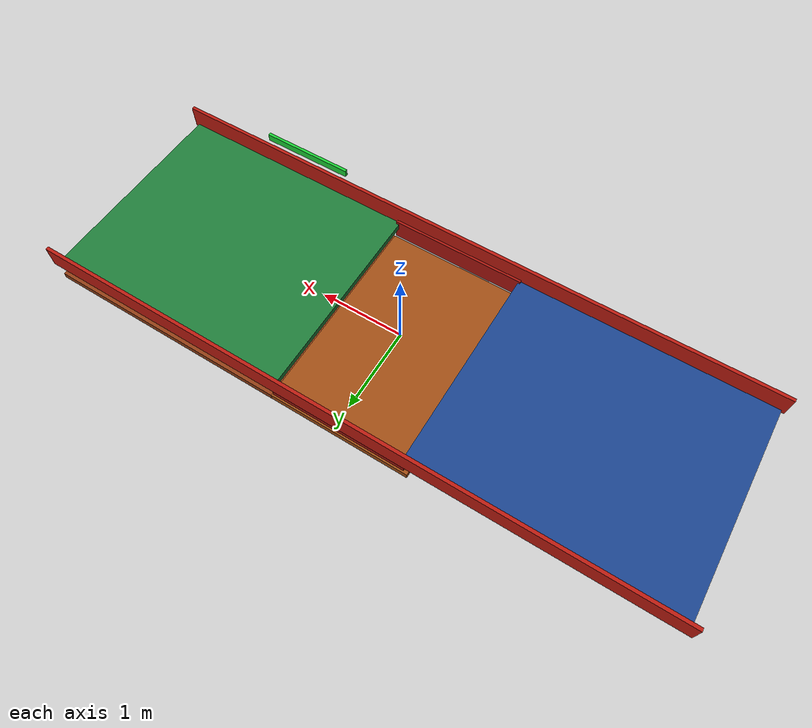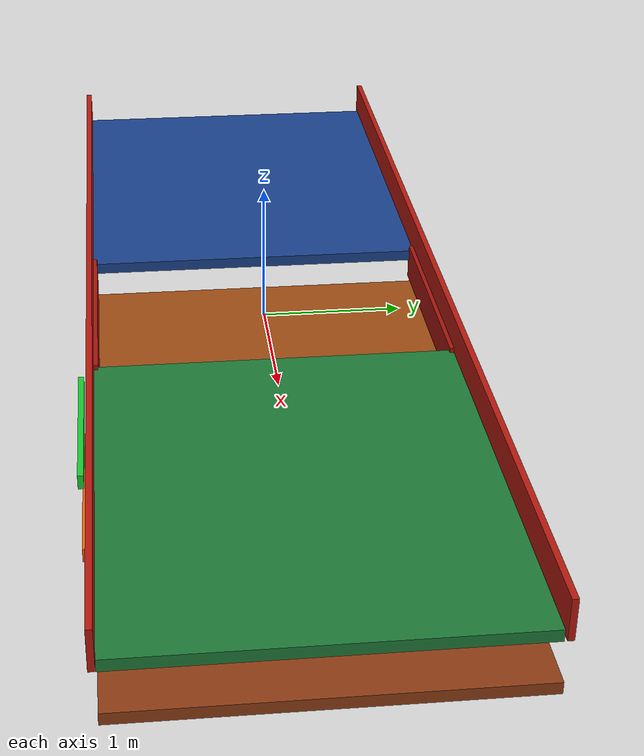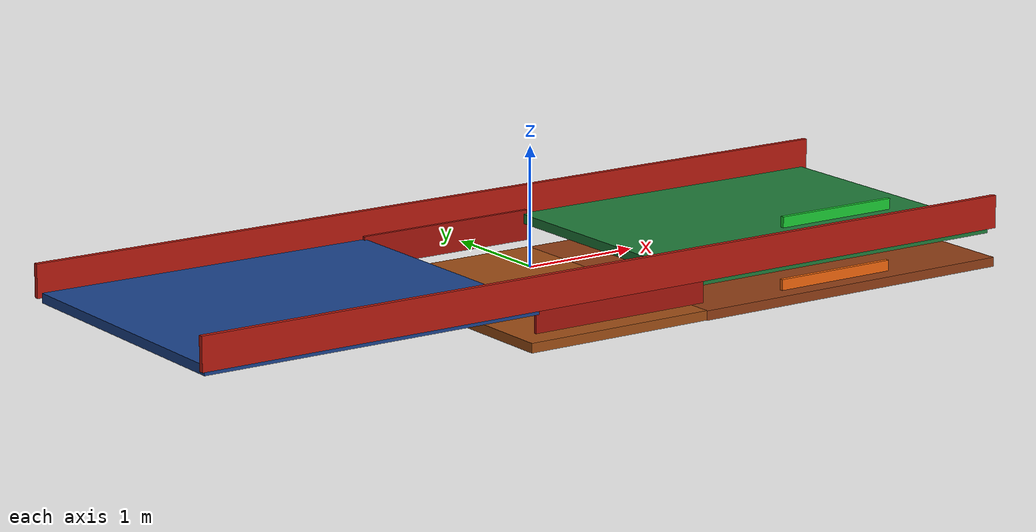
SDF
<?xml version="1.0"?>
<sdf version="1.10">
  <model name="infeed_size_separator">
    <static>true</static>

    <link name="entry_belt">
      <pose>-2.284 0 0.040 0 0 0</pose>
      <collision name="entry_belt_collision">
        <max_contacts>12</max_contacts>
        <geometry><box><size>3.000 2.500 0.080</size></box></geometry>
        <surface><friction><ode><mu>1.20</mu><mu2>0.80</mu2><fdir1>1 0 0</fdir1></ode></friction></surface>
      </collision>
      <visual name="entry_belt_visual">
        <geometry><box><size>3.000 2.500 0.080</size></box></geometry>
        <material><ambient>0.10 0.26 0.55 1</ambient><diffuse>0.10 0.26 0.55 1</diffuse></material>
      </visual>
    </link>
    <plugin filename="gz-sim-track-controller-system" name="gz::sim::systems::TrackController">
      <link>entry_belt</link>
      <track_orientation>0 0 0</track_orientation>
      <velocity_topic>/singulator/separator/infeed/cmd_vel</velocity_topic>
      <odometry_topic>/singulator/separator/infeed/odometry</odometry_topic>
      <odometry_publish_frequency>5</odometry_publish_frequency>
      <min_velocity>-2.5</min_velocity><max_velocity>2.5</max_velocity>
      <min_acceleration>-8.0</min_acceleration><max_acceleration>8.0</max_acceleration>
      <min_jerk>-40.0</min_jerk><max_jerk>40.0</max_jerk>
      <max_command_age>2.0</max_command_age>
    </plugin>

    <!-- Upper output starts 1 mm after the final 25 mm-radius roller and is
         4 mm lower than the roller crest. -->
    <link name="accepted_belt">
      <pose>2.276 0 0.036 0 0 0</pose>
      <collision name="accepted_belt_collision">
        <max_contacts>12</max_contacts>
        <geometry><box><size>3.000 2.500 0.080</size></box></geometry>
        <surface><friction><ode><mu>1.20</mu><mu2>0.80</mu2><fdir1>1 0 0</fdir1></ode></friction></surface>
      </collision>
      <visual name="accepted_belt_visual">
        <geometry><box><size>3.000 2.500 0.080</size></box></geometry>
        <material><ambient>0.12 0.48 0.22 1</ambient><diffuse>0.12 0.48 0.22 1</diffuse></material>
      </visual>
    </link>
    <plugin filename="gz-sim-track-controller-system" name="gz::sim::systems::TrackController">
      <link>accepted_belt</link>
      <track_orientation>0 0 0</track_orientation>
      <velocity_topic>/singulator/separator/accepted/cmd_vel</velocity_topic>
      <odometry_topic>/singulator/separator/accepted/odometry</odometry_topic>
      <odometry_publish_frequency>5</odometry_publish_frequency>
      <min_velocity>-2.5</min_velocity><max_velocity>2.5</max_velocity>
      <min_acceleration>-8.0</min_acceleration><max_acceleration>8.0</max_acceleration>
      <min_jerk>-40.0</min_jerk><max_jerk>40.0</max_jerk>
      <max_command_age>2.0</max_command_age>
    </plugin>

    <link name="reject_transfer_belt">
      <pose>0.000 0 -0.260 0 0 0</pose>
      <collision name="reject_transfer_belt_collision">
        <max_contacts>12</max_contacts>
        <geometry><box><size>1.700 2.500 0.080</size></box></geometry>
        <surface><friction><ode><mu>1.20</mu><mu2>0.80</mu2><fdir1>1 0 0</fdir1></ode></friction></surface>
      </collision>
      <visual name="reject_transfer_belt_visual">
        <geometry><box><size>1.700 2.500 0.080</size></box></geometry>
        <material><ambient>0.62 0.30 0.08 1</ambient><diffuse>0.62 0.30 0.08 1</diffuse></material>
      </visual>
    </link>
    <plugin filename="gz-sim-track-controller-system" name="gz::sim::systems::TrackController">
      <link>reject_transfer_belt</link>
      <track_orientation>0 0 0</track_orientation>
      <velocity_topic>/singulator/separator/reject_transfer/cmd_vel</velocity_topic>
      <odometry_topic>/singulator/separator/reject_transfer/odometry</odometry_topic>
      <odometry_publish_frequency>5</odometry_publish_frequency>
      <min_velocity>-2.5</min_velocity><max_velocity>2.5</max_velocity>
      <min_acceleration>-8.0</min_acceleration><max_acceleration>8.0</max_acceleration>
      <min_jerk>-40.0</min_jerk><max_jerk>40.0</max_jerk>
      <max_command_age>2.0</max_command_age>
    </plugin>

    <!-- The lower output uses the same 1 mm gap and 4 mm downward step. -->
    <link name="reject_belt">
      <pose>2.351 0 -0.264 0 0 0</pose>
      <collision name="reject_belt_collision">
        <max_contacts>12</max_contacts>
        <geometry><box><size>3.000 2.500 0.080</size></box></geometry>
        <surface><friction><ode><mu>1.20</mu><mu2>0.80</mu2><fdir1>1 0 0</fdir1></ode></friction></surface>
      </collision>
      <visual name="reject_belt_visual">
        <geometry><box><size>3.000 2.500 0.080</size></box></geometry>
        <material><ambient>0.56 0.24 0.08 1</ambient><diffuse>0.56 0.24 0.08 1</diffuse></material>
      </visual>
    </link>
    <plugin filename="gz-sim-track-controller-system" name="gz::sim::systems::TrackController">
      <link>reject_belt</link>
      <track_orientation>0 0 0</track_orientation>
      <velocity_topic>/singulator/separator/reject/cmd_vel</velocity_topic>
      <odometry_topic>/singulator/separator/reject/odometry</odometry_topic>
      <odometry_publish_frequency>5</odometry_publish_frequency>
      <min_velocity>-2.5</min_velocity><max_velocity>2.5</max_velocity>
      <min_acceleration>-8.0</min_acceleration><max_acceleration>8.0</max_acceleration>
      <min_jerk>-40.0</min_jerk><max_jerk>40.0</max_jerk>
      <max_command_age>2.0</max_command_age>
    </plugin>

    <link name="frame">
      <collision name="left_guard_collision"><pose>0 -1.270 0.180 0 0 0</pose><geometry><box><size>7.650 0.040 0.280</size></box></geometry></collision>
      <visual name="left_guard_visual"><pose>0 -1.270 0.180 0 0 0</pose><geometry><box><size>7.650 0.040 0.280</size></box></geometry><material><ambient>0.55 0.08 0.05 1</ambient><diffuse>0.72 0.10 0.06 1</diffuse></material></visual>
      <collision name="right_guard_collision"><pose>0 1.270 0.180 0 0 0</pose><geometry><box><size>7.650 0.040 0.280</size></box></geometry></collision>
      <visual name="right_guard_visual"><pose>0 1.270 0.180 0 0 0</pose><geometry><box><size>7.650 0.040 0.280</size></box></geometry><material><ambient>0.55 0.08 0.05 1</ambient><diffuse>0.72 0.10 0.06 1</diffuse></material></visual>

      <collision name="left_screen_cheek_collision"><pose>0 -1.235 -0.020 0 0 0</pose><geometry><box><size>1.620 0.030 0.260</size></box></geometry></collision>
      <visual name="left_screen_cheek_visual"><pose>0 -1.235 -0.020 0 0 0</pose><geometry><box><size>1.620 0.030 0.260</size></box></geometry><material><ambient>0.45 0.06 0.04 1</ambient><diffuse>0.65 0.08 0.05 1</diffuse></material></visual>
      <collision name="right_screen_cheek_collision"><pose>0 1.235 -0.020 0 0 0</pose><geometry><box><size>1.620 0.030 0.260</size></box></geometry></collision>
      <visual name="right_screen_cheek_visual"><pose>0 1.235 -0.020 0 0 0</pose><geometry><box><size>1.620 0.030 0.260</size></box></geometry><material><ambient>0.45 0.06 0.04 1</ambient><diffuse>0.65 0.08 0.05 1</diffuse></material></visual>

      <visual name="upper_label_visual"><pose>2.100 -1.310 0.420 0 0 0</pose><geometry><box><size>1.100 0.035 0.090</size></box></geometry><material><ambient>0.10 0.80 0.20 1</ambient><diffuse>0.10 0.80 0.20 1</diffuse></material></visual>
      <visual name="lower_label_visual"><pose>2.100 -1.310 -0.100 0 0 0</pose><geometry><box><size>1.100 0.035 0.090</size></box></geometry><material><ambient>0.95 0.40 0.05 1</ambient><diffuse>0.95 0.40 0.05 1</diffuse></material></visual>
    </link>
  </model>
</sdf>
